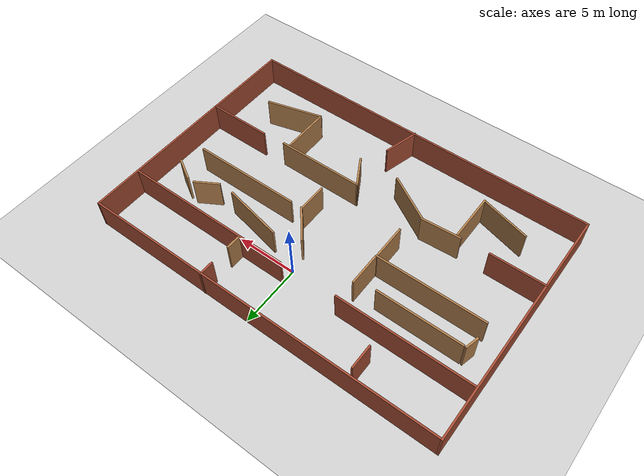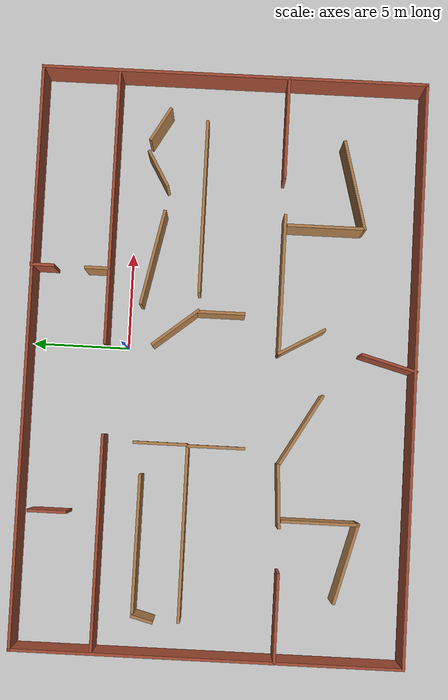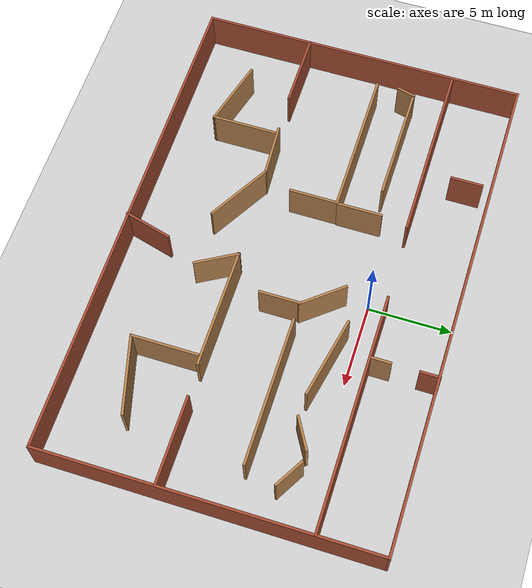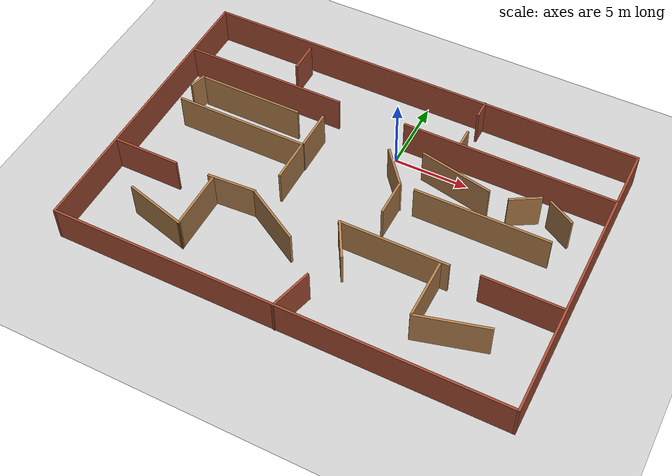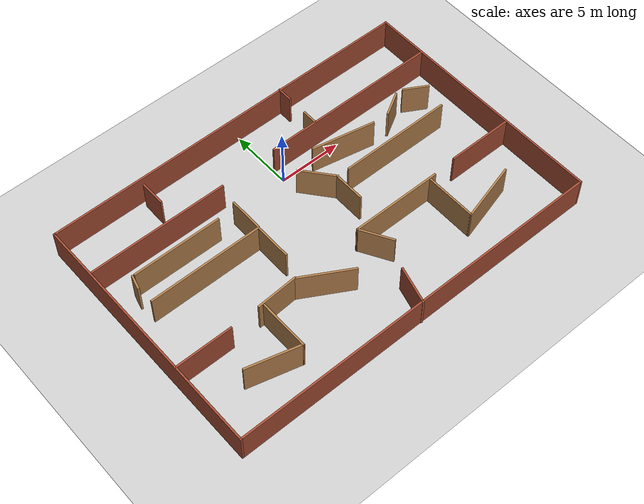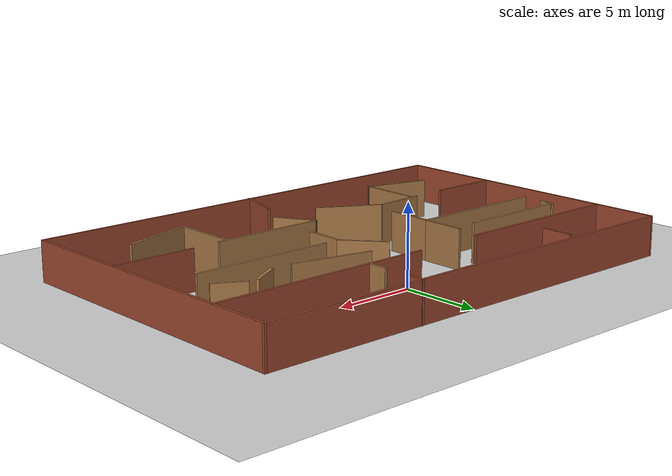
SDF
<sdf version="1.7">
 <world name="my_world">
  <model name="ground_plane">
   <static>1</static>
   <link name="link">
    <collision name="collision">
     <geometry><plane><normal>0 0 1</normal><size>100 100</size></plane></geometry>
     <surface>
      <contact><collide_bitmask>65535</collide_bitmask></contact>
      <friction><ode><mu>100</mu><mu2>50</mu2></ode></friction>
     </surface>
    </collision>
    <visual name="visual">
     <cast_shadows>0</cast_shadows>
     <geometry><plane><normal>0 0 1</normal><size>100 100</size></plane></geometry>
     <material>
      <script><uri>file://media/materials/scripts/gazebo.material</uri><name>Gazebo/Grey</name></script>
     </material>
    </visual>
   </link>
  </model>
  <model name="officeroom">
   <pose>-0.693163 -4.92976 0 0 -0 0</pose>
   <link name="Wall_10">
    <collision name="Wall_10_Collision">
     <geometry><box><size>20 0.15 2.5</size></box></geometry>
     <pose>0 0 1.25 0 -0 0</pose>
    </collision>
    <visual name="Wall_10_Visual">
     <pose>0 0 1.25 0 -0 0</pose>
     <geometry><box><size>20 0.15 2.5</size></box></geometry>
     <material>
      <script><uri>file://media/materials/scripts/gazebo.material</uri><name>Gazebo/Bricks</name></script>
      <ambient>1 1 1 1</ambient>
     </material>
     <meta><layer>0</layer></meta>
    </visual>
    <pose>14.925 0.014919 0 0 -0 -1.57081</pose>
   </link>
   <link name="Wall_107">
    <collision name="Wall_107_Collision">
     <geometry><box><size>3.27854 0.15 2.5</size></box></geometry>
     <pose>0 0 1.25 0 -0 0</pose>
    </collision>
    <visual name="Wall_107_Visual">
     <pose>0 0 1.25 0 -0 0</pose>
     <geometry><box><size>3.27854 0.15 2.5</size></box></geometry>
     <material>
      <script><uri>file://media/materials/scripts/gazebo.material</uri><name>Gazebo/Wood</name></script>
      <ambient>1 1 1 1</ambient>
     </material>
     <meta><layer>0</layer></meta>
    </visual>
    <pose>-6.58027 -3.242 0 0 -0 -3.08207</pose>
   </link>
   <link name="Wall_109">
    <collision name="Wall_109_Collision">
     <geometry><box><size>4.5 0.15 2.5</size></box></geometry>
     <pose>0 0 1.25 0 -0 0</pose>
    </collision>
    <visual name="Wall_109_Visual">
     <pose>0 0 1.25 0 -0 0</pose>
     <geometry><box><size>4.5 0.15 2.5</size></box></geometry>
     <material>
      <script><uri>file://media/materials/scripts/gazebo.material</uri><name>Gazebo/Bricks</name></script>
      <ambient>1 1 1 1</ambient>
     </material>
     <meta><layer>0</layer></meta>
    </visual>
    <pose>-12.6881 -3.41033 0 0 -0 0</pose>
   </link>
   <link name="Wall_113">
    <collision name="Wall_113_Collision">
     <geometry><box><size>7.25 0.15 2.5</size></box></geometry>
     <pose>0 0 1.25 0 -0 0</pose>
    </collision>
    <visual name="Wall_113_Visual">
     <pose>0 0 1.25 0 -0 0</pose>
     <geometry><box><size>7.25 0.15 2.5</size></box></geometry>
     <material>
      <script><uri>file://media/materials/scripts/gazebo.material</uri><name>Gazebo/Wood</name></script>
      <ambient>1 1 1 1</ambient>
     </material>
     <meta><layer>0</layer></meta>
    </visual>
    <pose>4.22386 -2.91887 0 0 -0 0</pose>
   </link>
   <link name="Wall_115">
    <collision name="Wall_115_Collision">
     <geometry><box><size>5.25 0.15 2.5</size></box></geometry>
     <pose>0 0 1.25 0 -0 0</pose>
    </collision>
    <visual name="Wall_115_Visual">
     <pose>0 0 1.25 0 -0 0</pose>
     <geometry><box><size>5.25 0.15 2.5</size></box></geometry>
     <material>
      <script><uri>file://media/materials/scripts/gazebo.material</uri><name>Gazebo/Bricks</name></script>
      <ambient>1 1 1 1</ambient>
     </material>
     <meta><layer>0</layer></meta>
    </visual>
    <pose>12.3137 -2.7793 0 0 -0 3.14159</pose>
   </link>
   <link name="Wall_118">
    <collision name="Wall_118_Collision">
     <geometry><box><size>2.5 0.15 2.5</size></box></geometry>
     <pose>0 0 1.25 0 -0 0</pose>
    </collision>
    <visual name="Wall_118_Visual">
     <pose>0 0 1.25 0 -0 0</pose>
     <geometry><box><size>2.5 0.15 2.5</size></box></geometry>
     <material>
      <script><uri>file://media/materials/scripts/gazebo.material</uri><name>Gazebo/Wood</name></script>
      <ambient>1 1 1 1</ambient>
     </material>
     <meta><layer>0</layer></meta>
    </visual>
    <pose>2.60295 0.147134 0 0 -0 -1.5708</pose>
   </link>
   <link name="Wall_12">
    <collision name="Wall_12_Collision">
     <geometry><box><size>30 0.15 2.5</size></box></geometry>
     <pose>0 0 1.25 0 -0 0</pose>
    </collision>
    <visual name="Wall_12_Visual">
     <pose>0 0 1.25 0 -0 0</pose>
     <geometry><box><size>30 0.15 2.5</size></box></geometry>
     <material>
      <script><uri>file://media/materials/scripts/gazebo.material</uri><name>Gazebo/Bricks</name></script>
      <ambient>1 1 1 1</ambient>
     </material>
     <meta><layer>0</layer></meta>
    </visual>
    <pose>-0.000162 -9.90993 0 0 -0 3.14159</pose>
   </link>
   <link name="Wall_120">
    <collision name="Wall_120_Collision">
     <geometry><box><size>2.75 0.15 2.5</size></box></geometry>
     <pose>0 0 1.25 0 -0 0</pose>
    </collision>
    <visual name="Wall_120_Visual">
     <pose>0 0 1.25 0 -0 0</pose>
     <geometry><box><size>2.75 0.15 2.5</size></box></geometry>
     <material>
      <script><uri>file://media/materials/scripts/gazebo.material</uri><name>Gazebo/Wood</name></script>
      <ambient>1 1 1 1</ambient>
     </material>
     <meta><layer>0</layer></meta>
    </visual>
    <pose>1.32386 -4.0447 0 0 -0 -1.0472</pose>
   </link>
   <link name="Wall_125">
    <collision name="Wall_125_Collision">
     <geometry><box><size>4 0.15 2.5</size></box></geometry>
     <pose>0 0 1.25 0 -0 0</pose>
    </collision>
    <visual name="Wall_125_Visual">
     <pose>0 0 1.25 0 -0 0</pose>
     <geometry><box><size>4 0.15 2.5</size></box></geometry>
     <material>
      <script><uri>file://media/materials/scripts/gazebo.material</uri><name>Gazebo/Wood</name></script>
      <ambient>1 1 1 1</ambient>
     </material>
     <meta><layer>0</layer></meta>
    </visual>
    <pose>-7.82101 -5.406 0 0 -0 -1.5708</pose>
   </link>
   <link name="Wall_127">
    <collision name="Wall_127_Collision">
     <geometry><box><size>4 0.15 2.5</size></box></geometry>
     <pose>0 0 1.25 0 -0 0</pose>
    </collision>
    <visual name="Wall_127_Visual">
     <pose>0 0 1.25 0 -0 0</pose>
     <geometry><box><size>4 0.15 2.5</size></box></geometry>
     <material>
      <script><uri>file://media/materials/scripts/gazebo.material</uri><name>Gazebo/Wood</name></script>
      <ambient>1 1 1 1</ambient>
     </material>
     <meta><layer>0</layer></meta>
    </visual>
    <pose>7.28181 -5.01384 0 0 -0 -1.5708</pose>
   </link>
   <link name="Wall_129">
    <collision name="Wall_129_Collision">
     <geometry><box><size>4.25 0.15 2.5</size></box></geometry>
     <pose>0 0 1.25 0 -0 0</pose>
    </collision>
    <visual name="Wall_129_Visual">
     <pose>0 0 1.25 0 -0 0</pose>
     <geometry><box><size>4.25 0.15 2.5</size></box></geometry>
     <material>
      <script><uri>file://media/materials/scripts/gazebo.material</uri><name>Gazebo/Wood</name></script>
      <ambient>1 1 1 1</ambient>
     </material>
     <meta><layer>0</layer></meta>
    </visual>
    <pose>-9.80116 -6.80042 0 0 -0 2.87979</pose>
   </link>
   <link name="Wall_132">
    <collision name="Wall_132_Collision">
     <geometry><box><size>4.75 0.15 2.5</size></box></geometry>
     <pose>0 0 1.25 0 -0 0</pose>
    </collision>
    <visual name="Wall_132_Visual">
     <pose>0 0 1.25 0 -0 0</pose>
     <geometry><box><size>4.75 0.15 2.5</size></box></geometry>
     <material>
      <script><uri>file://media/materials/scripts/gazebo.material</uri><name>Gazebo/Wood</name></script>
      <ambient>1 1 1 1</ambient>
     </material>
     <meta><layer>0</layer></meta>
    </visual>
    <pose>9.51735 -6.40461 0 0 -0 0.261799</pose>
   </link>
   <link name="Wall_134">
    <collision name="Wall_134_Collision">
     <geometry><box><size>3 0.15 2.5</size></box></geometry>
     <pose>0 0 1.25 0 -0 0</pose>
    </collision>
    <visual name="Wall_134_Visual">
     <pose>0 0 1.25 0 -0 0</pose>
     <geometry><box><size>3 0.15 2.5</size></box></geometry>
     <material>
      <script><uri>file://media/materials/scripts/gazebo.material</uri><name>Gazebo/Bricks</name></script>
      <ambient>1 1 1 1</ambient>
     </material>
     <meta><layer>0</layer></meta>
    </visual>
    <pose>0.445972 -8.57754 0 0 -0 1.309</pose>
   </link>
   <link name="Wall_15">
    <collision name="Wall_15_Collision">
     <geometry><box><size>20 0.15 2.5</size></box></geometry>
     <pose>0 0 1.25 0 -0 0</pose>
    </collision>
    <visual name="Wall_15_Visual">
     <pose>0 0 1.25 0 -0 0</pose>
     <geometry><box><size>20 0.15 2.5</size></box></geometry>
     <material>
      <script><uri>file://media/materials/scripts/gazebo.material</uri><name>Gazebo/Bricks</name></script>
      <ambient>1 1 1 1</ambient>
     </material>
     <meta><layer>0</layer></meta>
    </visual>
    <pose>-14.9252 0.015073 0 0 -0 1.5708</pose>
   </link>
   <link name="Wall_2">
    <collision name="Wall_2_Collision">
     <geometry><box><size>30 0.15 2.5</size></box></geometry>
     <pose>0 0 1.25 0 -0 0</pose>
    </collision>
    <visual name="Wall_2_Visual">
     <pose>0 0 1.25 0 -0 0</pose>
     <geometry><box><size>30 0.15 2.5</size></box></geometry>
     <material>
      <script><uri>file://media/materials/scripts/gazebo.material</uri><name>Gazebo/Bricks</name></script>
      <ambient>1 1 1 1</ambient>
     </material>
     <meta><layer>0</layer></meta>
    </visual>
    <pose>0.000163 9.93976 0 0 -0 0</pose>
   </link>
   <link name="Wall_29">
    <collision name="Wall_29_Collision">
     <geometry><box><size>1.25 0.15 2.5</size></box></geometry>
     <pose>0 0 1.25 0 -0 0</pose>
    </collision>
    <visual name="Wall_29_Visual">
     <pose>0 0 1.25 0 -0 0</pose>
     <geometry><box><size>1.25 0.15 2.5</size></box></geometry>
     <material>
      <script><uri>file://media/materials/scripts/gazebo.material</uri><name>Gazebo/Bricks</name></script>
      <ambient>1 1 1 1</ambient>
     </material>
     <meta><layer>0</layer></meta>
    </visual>
    <pose>4.61028 9.42084 0 0 -0 -1.5708</pose>
   </link>
   <link name="Wall_31">
    <collision name="Wall_31_Collision">
     <geometry><box><size>1.25 0.15 2.5</size></box></geometry>
     <pose>0 0 1.25 0 -0 0</pose>
    </collision>
    <visual name="Wall_31_Visual">
     <pose>0 0 1.25 0 -0 0</pose>
     <geometry><box><size>1.25 0.15 2.5</size></box></geometry>
     <material>
      <script><uri>file://media/materials/scripts/gazebo.material</uri><name>Gazebo/Wood</name></script>
      <ambient>1 1 1 1</ambient>
     </material>
     <meta><layer>0</layer></meta>
    </visual>
    <pose>4.59016 6.61881 0 0 -0 1.5708</pose>
   </link>
   <link name="Wall_34">
    <collision name="Wall_34_Collision">
     <geometry><box><size>2 0.15 2.5</size></box></geometry>
     <pose>0 0 1.25 0 -0 0</pose>
    </collision>
    <visual name="Wall_34_Visual">
     <pose>0 0 1.25 0 -0 0</pose>
     <geometry><box><size>2 0.15 2.5</size></box></geometry>
     <material>
      <script><uri>file://media/materials/scripts/gazebo.material</uri><name>Gazebo/Bricks</name></script>
      <ambient>1 1 1 1</ambient>
     </material>
     <meta><layer>0</layer></meta>
    </visual>
    <pose>-7.92097 8.43964 0 0 -0 -1.5708</pose>
   </link>
   <link name="Wall_38">
    <collision name="Wall_38_Collision">
     <geometry><box><size>11 0.15 2.5</size></box></geometry>
     <pose>0 0 1.25 0 -0 0</pose>
    </collision>
    <visual name="Wall_38_Visual">
     <pose>0 0 1.25 0 -0 0</pose>
     <geometry><box><size>11 0.15 2.5</size></box></geometry>
     <material>
      <script><uri>file://media/materials/scripts/gazebo.material</uri><name>Gazebo/Bricks</name></script>
      <ambient>1 1 1 1</ambient>
     </material>
     <meta><layer>0</layer></meta>
    </visual>
    <pose>-9.35541 5.8262 0 0 -0 0</pose>
   </link>
   <link name="Wall_40">
    <collision name="Wall_40_Collision">
     <geometry><box><size>14.25 0.15 2.5</size></box></geometry>
     <pose>0 0 1.25 0 -0 0</pose>
    </collision>
    <visual name="Wall_40_Visual">
     <pose>0 0 1.25 0 -0 0</pose>
     <geometry><box><size>14.25 0.15 2.5</size></box></geometry>
     <material>
      <script><uri>file://media/materials/scripts/gazebo.material</uri><name>Gazebo/Bricks</name></script>
      <ambient>1 1 1 1</ambient>
     </material>
     <meta><layer>0</layer></meta>
    </visual>
    <pose>7.83962 5.98375 0 0 -0 3.14159</pose>
   </link>
   <link name="Wall_46">
    <collision name="Wall_46_Collision">
     <geometry><box><size>7.0 0.15 2.5</size></box></geometry>
     <pose>0 0 1.25 0 -0 0</pose>
    </collision>
    <visual name="Wall_46_Visual">
     <pose>0 0 1.25 0 -0 0</pose>
     <geometry><box><size>7.0 0.15 2.5</size></box></geometry>
     <material>
      <script><uri>file://media/materials/scripts/gazebo.material</uri><name>Gazebo/Wood</name></script>
      <ambient>1 1 1 1</ambient>
     </material>
     <meta><layer>0</layer></meta>
    </visual>
    <pose>-9.30884 3.8355 0 0 -0 -0.004163</pose>
   </link>
   <link name="Wall_49">
    <collision name="Wall_49_Collision">
     <geometry><box><size>1.17019 0.15 2.5</size></box></geometry>
     <pose>0 0 1.25 0 -0 0</pose>
    </collision>
    <visual name="Wall_49_Visual">
     <pose>0 0 1.25 0 -0 0</pose>
     <geometry><box><size>1.17019 0.15 2.5</size></box></geometry>
     <material>
      <script><uri>file://media/materials/scripts/gazebo.material</uri><name>Gazebo/Wood</name></script>
      <ambient>1 1 1 1</ambient>
     </material>
     <meta><layer>0</layer></meta>
    </visual>
    <pose>-13.076 3.35727 0 0 -0 -1.82702</pose>
   </link>
   <link name="Wall_57">
    <collision name="Wall_57_Collision">
     <geometry><box><size>2.75 0.15 2.5</size></box></geometry>
     <pose>0 0 1.25 0 -0 0</pose>
    </collision>
    <visual name="Wall_57_Visual">
     <pose>0 0 1.25 0 -0 0</pose>
     <geometry><box><size>2.75 0.15 2.5</size></box></geometry>
     <material>
      <script><uri>file://media/materials/scripts/gazebo.material</uri><name>Gazebo/Wood</name></script>
      <ambient>1 1 1 1</ambient>
     </material>
     <meta><layer>0</layer></meta>
    </visual>
    <pose>-4.21161 2.89682 0 0 -0 1.5708</pose>
   </link>
   <link name="Wall_59">
    <collision name="Wall_59_Collision">
     <geometry><box><size>5.0 0.15 2.5</size></box></geometry>
     <pose>0 0 1.25 0 -0 0</pose>
    </collision>
    <visual name="Wall_59_Visual">
     <pose>0 0 1.25 0 -0 0</pose>
     <geometry><box><size>5.0 0.15 2.5</size></box></geometry>
     <material>
      <script><uri>file://media/materials/scripts/gazebo.material</uri><name>Gazebo/Wood</name></script>
      <ambient>1 1 1 1</ambient>
     </material>
     <meta><layer>0</layer></meta>
    </visual>
    <pose>5.28704 3.77735 0 0 -0 -0.202428</pose>
   </link>
   <link name="Wall_60">
    <collision name="Wall_60_Collision">
     <geometry><box><size>2.1 0.15 2.5</size></box></geometry>
     <pose>0 0 1.25 0 -0 0</pose>
    </collision>
    <visual name="Wall_60_Visual">
     <pose>0 0 1.25 0 -0 0</pose>
     <geometry><box><size>2.1 0.15 2.5</size></box></geometry>
     <material>
      <script><uri>file://media/materials/scripts/gazebo.material</uri><name>Gazebo/Wood</name></script>
      <ambient>1 1 1 1</ambient>
     </material>
     <meta><layer>0</layer></meta>
    </visual>
    <pose>9.88652 3.73459 0 0 -0 0.527727</pose>
   </link>
   <link name="Wall_61">
    <collision name="Wall_61_Collision">
     <geometry><box><size>2.0 0.15 2.5</size></box></geometry>
     <pose>0 0 1.25 0 -0 0</pose>
    </collision>
    <visual name="Wall_61_Visual">
     <pose>0 0 1.25 0 -0 0</pose>
     <geometry><box><size>2.0 0.15 2.5</size></box></geometry>
     <material>
      <script><uri>file://media/materials/scripts/gazebo.material</uri><name>Gazebo/Wood</name></script>
      <ambient>1 1 1 1</ambient>
     </material>
     <meta><layer>0</layer></meta>
    </visual>
    <pose>12.2003 3.7238 0 0 -0 -0.523599</pose>
   </link>
   <link name="Wall_66">
    <collision name="Wall_66_Collision">
     <geometry><box><size>3.01901 0.15 2.5</size></box></geometry>
     <pose>0 0 1.25 0 -0 0</pose>
    </collision>
    <visual name="Wall_66_Visual">
     <pose>0 0 1.25 0 -0 0</pose>
     <geometry><box><size>3.01901 0.15 2.5</size></box></geometry>
     <material>
      <script><uri>file://media/materials/scripts/gazebo.material</uri><name>Gazebo/Wood</name></script>
      <ambient>1 1 1 1</ambient>
     </material>
     <meta><layer>0</layer></meta>
    </visual>
    <pose>1.74226 2.43334 0 0 -0 2.25548</pose>
   </link>
   <link name="Wall_68">
    <collision name="Wall_68_Collision">
     <geometry><box><size>9 0.15 2.5</size></box></geometry>
     <pose>0 0 1.25 0 -0 0</pose>
    </collision>
    <visual name="Wall_68_Visual">
     <pose>0 0 1.25 0 -0 0</pose>
     <geometry><box><size>9 0.15 2.5</size></box></geometry>
     <material>
      <script><uri>file://media/materials/scripts/gazebo.material</uri><name>Gazebo/Wood</name></script>
      <ambient>1 1 1 1</ambient>
     </material>
     <meta><layer>0</layer></meta>
    </visual>
    <pose>-8.68528 1.49923 0 0 -0 3.14159</pose>
   </link>
   <link name="Wall_72">
    <collision name="Wall_72_Collision">
     <geometry><box><size>8.9356 0.15 2.5</size></box></geometry>
     <pose>0 0 1.25 0 -0 0</pose>
    </collision>
    <visual name="Wall_72_Visual">
     <pose>0 0 1.25 0 -0 0</pose>
     <geometry><box><size>8.9356 0.15 2.5</size></box></geometry>
     <material>
      <script><uri>file://media/materials/scripts/gazebo.material</uri><name>Gazebo/Wood</name></script>
      <ambient>1 1 1 1</ambient>
     </material>
     <meta><layer>0</layer></meta>
    </visual>
    <pose>8.04226 1.32213 0 0 -0 3.14159</pose>
   </link>
   <link name="Wall_75">
    <collision name="Wall_75_Collision">
     <geometry><box><size>3 0.15 2.5</size></box></geometry>
     <pose>0 0 1.25 0 -0 0</pose>
    </collision>
    <visual name="Wall_75_Visual">
     <pose>0 0 1.25 0 -0 0</pose>
     <geometry><box><size>3 0.15 2.5</size></box></geometry>
     <material>
      <script><uri>file://media/materials/scripts/gazebo.material</uri><name>Gazebo/Wood</name></script>
      <ambient>1 1 1 1</ambient>
     </material>
     <meta><layer>0</layer></meta>
    </visual>
    <pose>-4.26028 0.074229 0 0 -0 -1.5708</pose>
   </link>
   <link name="Wall_81">
    <collision name="Wall_81_Collision">
     <geometry><box><size>4.25 0.15 2.5</size></box></geometry>
     <pose>0 0 1.25 0 -0 0</pose>
    </collision>
    <visual name="Wall_81_Visual">
     <pose>0 0 1.25 0 -0 0</pose>
     <geometry><box><size>4.25 0.15 2.5</size></box></geometry>
     <material>
      <script><uri>file://media/materials/scripts/gazebo.material</uri><name>Gazebo/Wood</name></script>
      <ambient>1 1 1 1</ambient>
     </material>
     <meta><layer>0</layer></meta>
    </visual>
    <pose>-3.1969 -4.22048 0 0 -0 -0.523599</pose>
   </link>
   <static>1</static>
  </model>
 </world>
</sdf>
